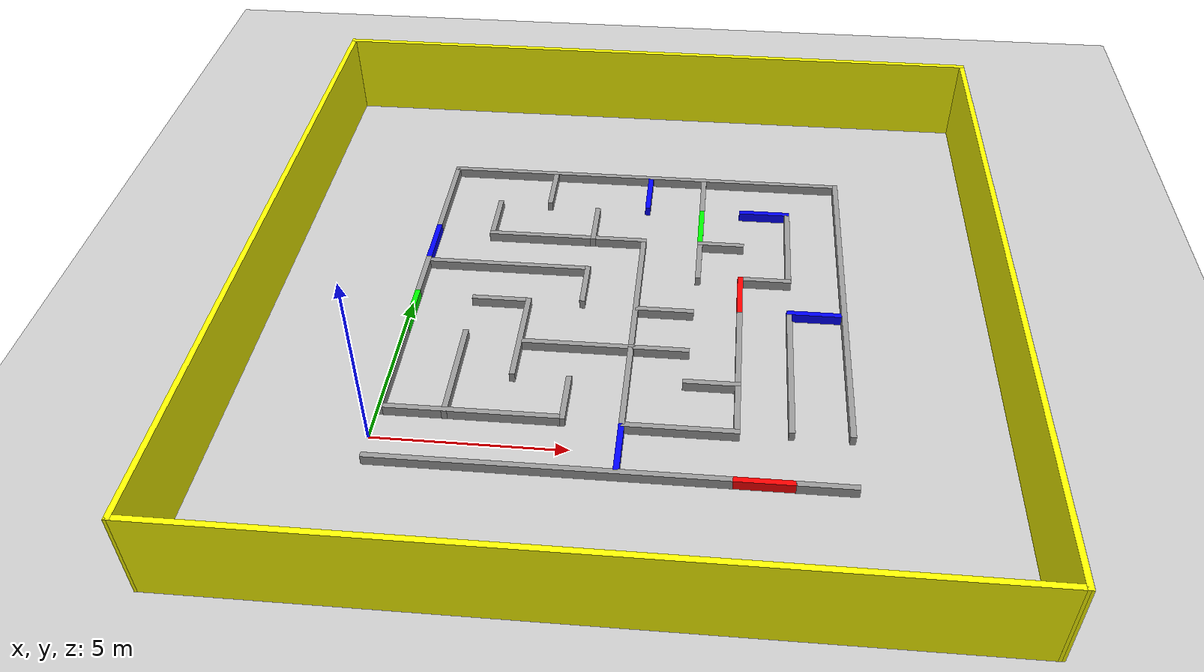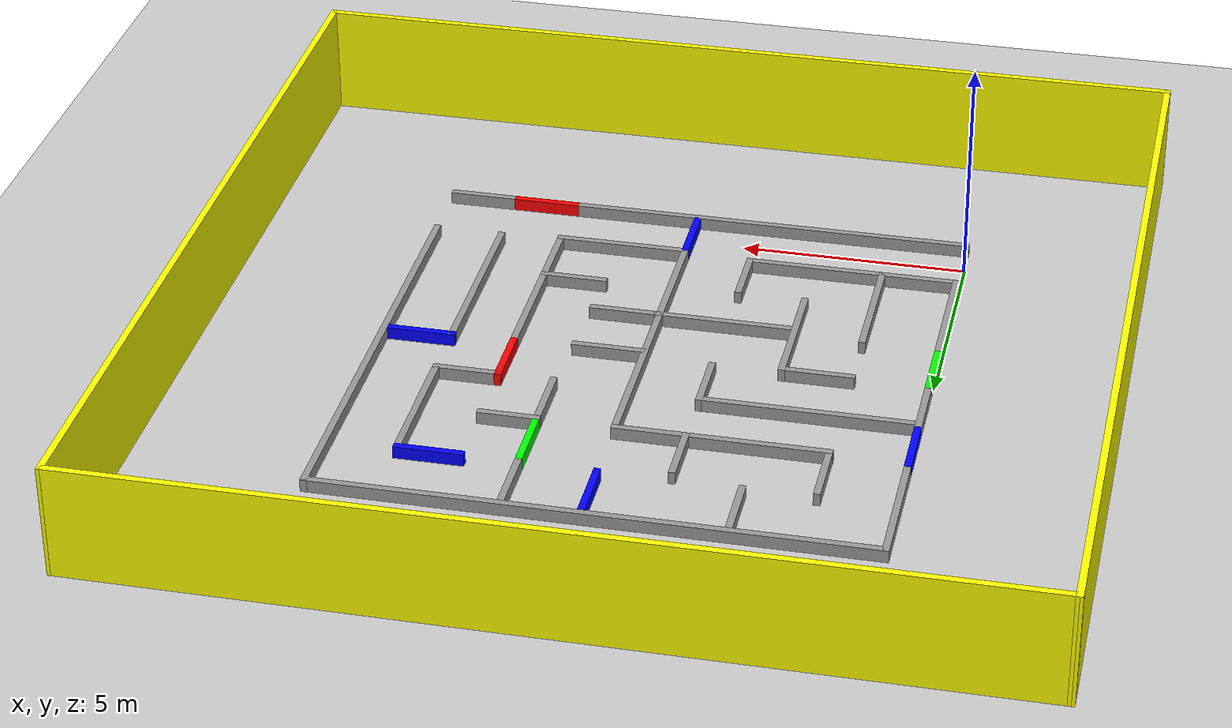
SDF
<sdf version="1.7">
 <world name="default">
  <light name="sun" type="directional">
   <pose>0 0 10 0 -0 0</pose>
   <diffuse>0.8 0.8 0.8 1</diffuse>
   <specular>0.2 0.2 0.2 1</specular>
   <attenuation>
    <range>1000</range>
    <constant>0.9</constant>
    <linear>0.01</linear>
    <quadratic>0.001</quadratic>
   </attenuation>
   <direction>-0.5 0.1 -0.9</direction>
   <spot><inner_angle>0</inner_angle><outer_angle>0</outer_angle><falloff>0</falloff></spot>
  </light>
  <model name="ground_plane">
   <static>1</static>
   <link name="link">
    <collision name="collision">
     <geometry><plane><normal>0 0 1</normal><size>100 100</size></plane></geometry>
     <surface><friction><ode><mu>100</mu><mu2>50</mu2></ode></friction></surface>
    </collision>
    <visual name="visual">
     <cast_shadows>0</cast_shadows>
     <geometry><plane><normal>0 0 1</normal><size>100 100</size></plane></geometry>
     <material>
      <script><uri>file://media/materials/scripts/gazebo.material</uri><name>Gazebo/Grey</name></script>
     </material>
    </visual>
   </link>
  </model>
  <gravity>0 0 -9.8</gravity>
  <magnetic_field>6e-06 2.3e-05 -4.2e-05</magnetic_field>
  <atmosphere type="adiabatic"/>
  <physics type="ode">
   <max_step_size>0.001</max_step_size>
   <real_time_factor>1</real_time_factor>
   <real_time_update_rate>1000</real_time_update_rate>
  </physics>
  <scene><ambient>0.4 0.4 0.4 1</ambient><background>0.7 0.7 0.7 1</background><shadows>1</shadows></scene>
  <audio><device>default</device></audio>
  <spherical_coordinates>
   <surface_model>EARTH_WGS84</surface_model>
   <latitude_deg>0</latitude_deg>
   <longitude_deg>0</longitude_deg>
   <elevation>0</elevation>
   <heading_deg>0</heading_deg>
  </spherical_coordinates>
  <model name="rbtc_class_labyrinth">
   <static>1</static>
   <pose>6.00404 5.23543 -0.25 0 0 -1.57079</pose>
   <link name="Wall_10">
    <collision name="Wall_10_Collision">
     <geometry><box><size>12 0.15 0.5</size></box></geometry>
     <pose>0 0 0.25 0 -0 0</pose>
    </collision>
    <visual name="Wall_10_Visual">
     <pose>0 0 0.25 0 -0 0</pose>
     <geometry><box><size>12 0.15 0.5</size></box></geometry>
     <material>
      <script><uri>file://media/materials/scripts/gazebo.material</uri><name>Gazebo/Grey</name></script>
      <ambient>0 0 0 1</ambient>
     </material>
     <meta><layer>0</layer></meta>
    </visual>
    <pose>-5.99967 -0.000279 0 0 -0 -1.5708</pose>
   </link>
   <link name="Wall_102">
    <collision name="Wall_102_Collision">
     <geometry><box><size>1.35 0.15 0.5</size></box></geometry>
     <pose>0 0 0.25 0 -0 0</pose>
    </collision>
    <visual name="Wall_102_Visual">
     <pose>0 0 0.25 0 -0 0</pose>
     <geometry><box><size>1.35 0.15 0.5</size></box></geometry>
     <material>
      <script><uri>file://media/materials/scripts/gazebo.material</uri><name>Gazebo/Grey</name></script>
      <ambient>0 0 0 1</ambient>
     </material>
     <meta><layer>0</layer></meta>
    </visual>
    <pose>-2.85168 2.46272 0 0 -0 1.5708</pose>
   </link>
   <link name="Wall_104">
    <collision name="Wall_104_Collision">
     <geometry><box><size>1.5 0.15 0.5</size></box></geometry>
     <pose>0 0 0.25 0 -0 0</pose>
    </collision>
    <visual name="Wall_104_Visual">
     <pose>0 0 0.25 0 -0 0</pose>
     <geometry><box><size>1.5 0.15 0.5</size></box></geometry>
     <material>
      <script><uri>file://media/materials/scripts/gazebo.material</uri><name>Gazebo/Grey</name></script>
      <ambient>0 0 0 1</ambient>
     </material>
     <meta><layer>0</layer></meta>
    </visual>
    <pose>-5.17467 1.86272 0 0 -0 0</pose>
   </link>
   <link name="Wall_106">
    <collision name="Wall_106_Collision">
     <geometry><box><size>1.5 0.15 0.5</size></box></geometry>
     <pose>0 0 0.25 0 -0 0</pose>
    </collision>
    <visual name="Wall_106_Visual">
     <pose>0 0 0.25 0 -0 0</pose>
     <geometry><box><size>1.5 0.15 0.5</size></box></geometry>
     <material>
      <script><uri>file://media/materials/scripts/gazebo.material</uri><name>Gazebo/Grey</name></script>
      <ambient>0 1 0 1</ambient>
     </material>
     <meta><layer>0</layer></meta>
    </visual>
    <pose>-3.67568 1.86272 0 0 -0 0</pose>
   </link>
   <link name="Wall_108">
    <collision name="Wall_108_Collision">
     <geometry><box><size>7.25 0.15 0.5</size></box></geometry>
     <pose>0 0 0.25 0 -0 0</pose>
    </collision>
    <visual name="Wall_108_Visual">
     <pose>0 0 0.25 0 -0 0</pose>
     <geometry><box><size>7.25 0.15 0.5</size></box></geometry>
     <material>
      <script><uri>file://media/materials/scripts/gazebo.material</uri><name>Gazebo/Grey</name></script>
      <ambient>0 0 0 1</ambient>
     </material>
     <meta><layer>0</layer></meta>
    </visual>
    <pose>0.843091 0.208721 0 0 -0 0</pose>
   </link>
   <link name="Wall_11">
    <collision name="Wall_11_Collision">
     <geometry><box><size>3 0.15 0.5</size></box></geometry>
     <pose>0 0 0.25 0 -0 0</pose>
    </collision>
    <visual name="Wall_11_Visual">
     <pose>0 0 0.25 0 -0 0</pose>
     <geometry><box><size>3 0.15 0.5</size></box></geometry>
     <material>
      <script><uri>file://media/materials/scripts/gazebo.material</uri><name>Gazebo/Grey</name></script>
      <ambient>0 0 0 1</ambient>
     </material>
     <meta><layer>0</layer></meta>
    </visual>
    <pose>-4.57467 -5.92528 0 0 -0 0</pose>
   </link>
   <link name="Wall_110">
    <collision name="Wall_110_Collision">
     <geometry><box><size>1.5 0.15 0.5</size></box></geometry>
     <pose>0 0 0.25 0 -0 0</pose>
    </collision>
    <visual name="Wall_110_Visual">
     <pose>0 0 0.25 0 -0 0</pose>
     <geometry><box><size>1.5 0.15 0.5</size></box></geometry>
     <material>
      <script><uri>file://media/materials/scripts/gazebo.material</uri><name>Gazebo/Grey</name></script>
      <ambient>0 0 0 1</ambient>
     </material>
     <meta><layer>0</layer></meta>
    </visual>
    <pose>-2.02668 1.86272 0 0 -0 0</pose>
   </link>
   <link name="Wall_114">
    <collision name="Wall_114_Collision">
     <geometry><box><size>1.6 0.15 0.5</size></box></geometry>
     <pose>0 0 0.25 0 -0 0</pose>
    </collision>
    <visual name="Wall_114_Visual">
     <pose>0 0 0.25 0 -0 0</pose>
     <geometry><box><size>1.6 0.15 0.5</size></box></geometry>
     <material>
      <script><uri>file://media/materials/scripts/gazebo.material</uri><name>Gazebo/Grey</name></script>
      <ambient>0 0 0 1</ambient>
     </material>
     <meta><layer>0</layer></meta>
    </visual>
    <pose>0.148325 1.00672 0 0 -0 -1.5708</pose>
   </link>
   <link name="Wall_121">
    <collision name="Wall_121_Collision">
     <geometry><box><size>1.5 0.15 0.5</size></box></geometry>
     <pose>0 0 0.25 0 -0 0</pose>
    </collision>
    <visual name="Wall_121_Visual">
     <pose>0 0 0.25 0 -0 0</pose>
     <geometry><box><size>1.5 0.15 0.5</size></box></geometry>
     <material>
      <script><uri>file://media/materials/scripts/gazebo.material</uri><name>Gazebo/Grey</name></script>
      <ambient>0 0 1 1</ambient>
     </material>
     <meta><layer>0</layer></meta>
    </visual>
    <pose>5.21232 0.208721 0 0 -0 0</pose>
   </link>
   <link name="Wall_13">
    <collision name="Wall_13_Collision">
     <geometry><box><size>10.5 0.15 0.5</size></box></geometry>
     <pose>0 0 0.25 0 -0 0</pose>
    </collision>
    <visual name="Wall_13_Visual">
     <pose>0 0 0.25 0 -0 0</pose>
     <geometry><box><size>10.5 0.15 0.5</size></box></geometry>
     <material>
      <script><uri>file://media/materials/scripts/gazebo.material</uri><name>Gazebo/Grey</name></script>
      <ambient>0 0 0 1</ambient>
     </material>
     <meta><layer>0</layer></meta>
    </visual>
    <pose>-0.824675 5.92472 0 0 -0 0</pose>
   </link>
   <link name="Wall_136">
    <collision name="Wall_136_Collision">
     <geometry><box><size>3 0.15 0.5</size></box></geometry>
     <pose>0 0 0.25 0 -0 0</pose>
    </collision>
    <visual name="Wall_136_Visual">
     <pose>0 0 0.25 0 -0 0</pose>
     <geometry><box><size>3 0.15 0.5</size></box></geometry>
     <material>
      <script><uri>file://media/materials/scripts/gazebo.material</uri><name>Gazebo/Grey</name></script>
      <ambient>0 0 0 1</ambient>
     </material>
     <meta><layer>0</layer></meta>
    </visual>
    <pose>4.47332 1.64072 0 0 -0 1.5708</pose>
   </link>
   <link name="Wall_138">
    <collision name="Wall_138_Collision">
     <geometry><box><size>1.5 0.15 0.5</size></box></geometry>
     <pose>0 0 0.25 0 -0 0</pose>
    </collision>
    <visual name="Wall_138_Visual">
     <pose>0 0 0.25 0 -0 0</pose>
     <geometry><box><size>1.5 0.15 0.5</size></box></geometry>
     <material>
      <script><uri>file://media/materials/scripts/gazebo.material</uri><name>Gazebo/Grey</name></script>
      <ambient>0 0 0 1</ambient>
     </material>
     <meta><layer>0</layer></meta>
    </visual>
    <pose>2.84932 2.39072 0 0 -0 -1.5708</pose>
   </link>
   <link name="Wall_140">
    <collision name="Wall_140_Collision">
     <geometry><box><size>1.5 0.15 0.5</size></box></geometry>
     <pose>0 0 0.25 0 -0 0</pose>
    </collision>
    <visual name="Wall_140_Visual">
     <pose>0 0 0.25 0 -0 0</pose>
     <geometry><box><size>1.5 0.15 0.5</size></box></geometry>
     <material>
      <script><uri>file://media/materials/scripts/gazebo.material</uri><name>Gazebo/Grey</name></script>
      <ambient>0 0 0 1</ambient>
     </material>
     <meta><layer>0</layer></meta>
    </visual>
    <pose>3.65033 3.06572 0 0 -0 0</pose>
   </link>
   <link name="Wall_142">
    <collision name="Wall_142_Collision">
     <geometry><box><size>1.5 0.15 0.5</size></box></geometry>
     <pose>0 0 0.25 0 -0 0</pose>
    </collision>
    <visual name="Wall_142_Visual">
     <pose>0 0 0.25 0 -0 0</pose>
     <geometry><box><size>1.5 0.15 0.5</size></box></geometry>
     <material>
      <script><uri>file://media/materials/scripts/gazebo.material</uri><name>Gazebo/Grey</name></script>
      <ambient>0 0 0 1</ambient>
     </material>
     <meta><layer>0</layer></meta>
    </visual>
    <pose>1.69633 1.01672 0 0 -0 -1.5708</pose>
   </link>
   <link name="Wall_144">
    <collision name="Wall_144_Collision">
     <geometry><box><size>2.75 0.15 0.5</size></box></geometry>
     <pose>0 0 0.25 0 -0 0</pose>
    </collision>
    <visual name="Wall_144_Visual">
     <pose>0 0 0.25 0 -0 0</pose>
     <geometry><box><size>2.75 0.15 0.5</size></box></geometry>
     <material>
      <script><uri>file://media/materials/scripts/gazebo.material</uri><name>Gazebo/Grey</name></script>
      <ambient>0 0 0 1</ambient>
     </material>
     <meta><layer>0</layer></meta>
    </visual>
    <pose>1.44932 3.06572 0 0 -0 0</pose>
   </link>
   <link name="Wall_146">
    <collision name="Wall_146_Collision">
     <geometry><box><size>1.5 0.15 0.5</size></box></geometry>
     <pose>0 0 0.25 0 -0 0</pose>
    </collision>
    <visual name="Wall_146_Visual">
     <pose>0 0 0.25 0 -0 0</pose>
     <geometry><box><size>1.5 0.15 0.5</size></box></geometry>
     <material>
      <script><uri>file://media/materials/scripts/gazebo.material</uri><name>Gazebo/Grey</name></script>
      <ambient>1 0 0 1</ambient>
     </material>
     <meta><layer>0</layer></meta>
    </visual>
    <pose>-0.672675 3.06572 0 0 -0 0</pose>
   </link>
   <link name="Wall_148">
    <collision name="Wall_148_Collision">
     <geometry><box><size>1.5 0.15 0.5</size></box></geometry>
     <pose>0 0 0.25 0 -0 0</pose>
    </collision>
    <visual name="Wall_148_Visual">
     <pose>0 0 0.25 0 -0 0</pose>
     <geometry><box><size>1.5 0.15 0.5</size></box></geometry>
     <material>
      <script><uri>file://media/materials/scripts/gazebo.material</uri><name>Gazebo/Grey</name></script>
      <ambient>0 0 0 1</ambient>
     </material>
     <meta><layer>0</layer></meta>
    </visual>
    <pose>-1.34668 3.74072 0 0 -0 1.5708</pose>
   </link>
   <link name="Wall_150">
    <collision name="Wall_150_Collision">
     <geometry><box><size>3 0.15 0.5</size></box></geometry>
     <pose>0 0 0.25 0 -0 0</pose>
    </collision>
    <visual name="Wall_150_Visual">
     <pose>0 0 0.25 0 -0 0</pose>
     <geometry><box><size>3 0.15 0.5</size></box></geometry>
     <material>
      <script><uri>file://media/materials/scripts/gazebo.material</uri><name>Gazebo/Grey</name></script>
      <ambient>0 0 0 1</ambient>
     </material>
     <meta><layer>0</layer></meta>
    </visual>
    <pose>-2.88967 4.41572 0 0 -0 3.14159</pose>
   </link>
   <link name="Wall_154">
    <collision name="Wall_154_Collision">
     <geometry><box><size>1.5 0.15 0.5</size></box></geometry>
     <pose>0 0 0.25 0 -0 0</pose>
    </collision>
    <visual name="Wall_154_Visual">
     <pose>0 0 0.25 0 -0 0</pose>
     <geometry><box><size>1.5 0.15 0.5</size></box></geometry>
     <material>
      <script><uri>file://media/materials/scripts/gazebo.material</uri><name>Gazebo/Grey</name></script>
      <ambient>0 0 1 1</ambient>
     </material>
     <meta><layer>0</layer></meta>
    </visual>
    <pose>-4.45367 3.74072 0 0 -0 -1.5708</pose>
   </link>
   <link name="Wall_158">
    <collision name="Wall_158_Collision">
     <geometry><box><size>4.5 0.15 0.5</size></box></geometry>
     <pose>0 0 0.25 0 -0 0</pose>
    </collision>
    <visual name="Wall_158_Visual">
     <pose>0 0 0.25 0 -0 0</pose>
     <geometry><box><size>4.5 0.15 0.5</size></box></geometry>
     <material>
      <script><uri>file://media/materials/scripts/gazebo.material</uri><name>Gazebo/Grey</name></script>
      <ambient>0 0 0 1</ambient>
     </material>
     <meta><layer>0</layer></meta>
    </visual>
    <pose>4.34933 -3.60028 0 0 -0 -1.5708</pose>
   </link>
   <link name="Wall_160">
    <collision name="Wall_160_Collision">
     <geometry><box><size>3 0.15 0.5</size></box></geometry>
     <pose>0 0 0.25 0 -0 0</pose>
    </collision>
    <visual name="Wall_160_Visual">
     <pose>0 0 0.25 0 -0 0</pose>
     <geometry><box><size>3 0.15 0.5</size></box></geometry>
     <material>
      <script><uri>file://media/materials/scripts/gazebo.material</uri><name>Gazebo/Grey</name></script>
      <ambient>0 0 0 1</ambient>
     </material>
     <meta><layer>0</layer></meta>
    </visual>
    <pose>2.92433 -4.27628 0 0 -0 3.14159</pose>
   </link>
   <link name="Wall_162">
    <collision name="Wall_162_Collision">
     <geometry><box><size>4.5 0.15 0.5</size></box></geometry>
     <pose>0 0 0.25 0 -0 0</pose>
    </collision>
    <visual name="Wall_162_Visual">
     <pose>0 0 0.25 0 -0 0</pose>
     <geometry><box><size>4.5 0.15 0.5</size></box></geometry>
     <material>
      <script><uri>file://media/materials/scripts/gazebo.material</uri><name>Gazebo/Grey</name></script>
      <ambient>0 0 0 1</ambient>
     </material>
     <meta><layer>0</layer></meta>
    </visual>
    <pose>-1.44467 -3.60128 0 0 -0 1.5708</pose>
   </link>
   <link name="Wall_164">
    <collision name="Wall_164_Collision">
     <geometry><box><size>1.5 0.15 0.5</size></box></geometry>
     <pose>0 0 0.25 0 -0 0</pose>
    </collision>
    <visual name="Wall_164_Visual">
     <pose>0 0 0.25 0 -0 0</pose>
     <geometry><box><size>1.5 0.15 0.5</size></box></geometry>
     <material>
      <script><uri>file://media/materials/scripts/gazebo.material</uri><name>Gazebo/Grey</name></script>
      <ambient>0 0 0 1</ambient>
     </material>
     <meta><layer>0</layer></meta>
    </visual>
    <pose>-0.769675 -1.29528 0 0 -0 0</pose>
   </link>
   <link name="Wall_166">
    <collision name="Wall_166_Collision">
     <geometry><box><size>1.5 0.15 0.5</size></box></geometry>
     <pose>0 0 0.25 0 -0 0</pose>
    </collision>
    <visual name="Wall_166_Visual">
     <pose>0 0 0.25 0 -0 0</pose>
     <geometry><box><size>1.5 0.15 0.5</size></box></geometry>
     <material>
      <script><uri>file://media/materials/scripts/gazebo.material</uri><name>Gazebo/Grey</name></script>
      <ambient>0 0 0 1</ambient>
     </material>
     <meta><layer>0</layer></meta>
    </visual>
    <pose>3.67433 -1.29128 0 0 -0 3.14159</pose>
   </link>
   <link name="Wall_168">
    <collision name="Wall_168_Collision">
     <geometry><box><size>1.5 0.15 0.5</size></box></geometry>
     <pose>0 0 0.25 0 -0 0</pose>
    </collision>
    <visual name="Wall_168_Visual">
     <pose>0 0 0.25 0 -0 0</pose>
     <geometry><box><size>1.5 0.15 0.5</size></box></geometry>
     <material>
      <script><uri>file://media/materials/scripts/gazebo.material</uri><name>Gazebo/Grey</name></script>
      <ambient>0 0 0 1</ambient>
     </material>
     <meta><layer>0</layer></meta>
    </visual>
    <pose>0.059325 -3.60252 0 0 -0 -1.5708</pose>
   </link>
   <link name="Wall_170">
    <collision name="Wall_170_Collision">
     <geometry><box><size>3 0.15 0.5</size></box></geometry>
     <pose>0 0 0.25 0 -0 0</pose>
    </collision>
    <visual name="Wall_170_Visual">
     <pose>0 0 0.25 0 -0 0</pose>
     <geometry><box><size>3 0.15 0.5</size></box></geometry>
     <material>
      <script><uri>file://media/materials/scripts/gazebo.material</uri><name>Gazebo/Grey</name></script>
      <ambient>0 0 0 1</ambient>
     </material>
     <meta><layer>0</layer></meta>
    </visual>
    <pose>1.48432 -2.77828 0 0 -0 0</pose>
   </link>
   <link name="Wall_172">
    <collision name="Wall_172_Collision">
     <geometry><box><size>3.05 0.15 0.5</size></box></geometry>
     <pose>0 0 0.25 0 -0 0</pose>
    </collision>
    <visual name="Wall_172_Visual">
     <pose>0 0 0.25 0 -0 0</pose>
     <geometry><box><size>3.05 0.15 0.5</size></box></geometry>
     <material>
      <script><uri>file://media/materials/scripts/gazebo.material</uri><name>Gazebo/Grey</name></script>
      <ambient>0 0 0 1</ambient>
     </material>
     <meta><layer>0</layer></meta>
    </visual>
    <pose>1.69633 -1.19428 0 0 -0 1.5708</pose>
   </link>
   <link name="Wall_20">
    <collision name="Wall_20_Collision">
     <geometry><box><size>4.5 0.15 0.5</size></box></geometry>
     <pose>0 0 0.25 0 -0 0</pose>
    </collision>
    <visual name="Wall_20_Visual">
     <pose>0 0 0.25 0 -0 0</pose>
     <geometry><box><size>4.5 0.15 0.5</size></box></geometry>
     <material>
      <script><uri>file://media/materials/scripts/gazebo.material</uri><name>Gazebo/Grey</name></script>
      <ambient>0 0 0 1</ambient>
     </material>
     <meta><layer>0</layer></meta>
    </visual>
    <pose>2.15733 4.42372 0 0 -0 3.14159</pose>
   </link>
   <link name="Wall_21">
    <collision name="Wall_21_Collision">
     <geometry><box><size>1.5003 0.15 0.5</size></box></geometry>
     <pose>0 0 0.25 0 -0 0</pose>
    </collision>
    <visual name="Wall_21_Visual">
     <pose>0 0 0.25 0 -0 0</pose>
     <geometry><box><size>1.5003 0.15 0.5</size></box></geometry>
     <material>
      <script><uri>file://media/materials/scripts/gazebo.material</uri><name>Gazebo/Grey</name></script>
      <ambient>0 0 1 1</ambient>
     </material>
     <meta><layer>0</layer></meta>
    </visual>
    <pose>-0.017675 5.09872 0 0 -0 1.5708</pose>
   </link>
   <link name="Wall_29">
    <collision name="Wall_29_Collision">
     <geometry><box><size>1.5 0.15 0.5</size></box></geometry>
     <pose>0 0 0.25 0 -0 0</pose>
    </collision>
    <visual name="Wall_29_Visual">
     <pose>0 0 0.25 0 -0 0</pose>
     <geometry><box><size>1.5 0.15 0.5</size></box></geometry>
     <material>
      <script><uri>file://media/materials/scripts/gazebo.material</uri><name>Gazebo/Grey</name></script>
      <ambient>0 0 0 1</ambient>
     </material>
     <meta><layer>0</layer></meta>
    </visual>
    <pose>5.99967 5.25028 0 0 -0 -1.5708</pose>
   </link>
   <link name="Wall_45">
    <collision name="Wall_45_Collision">
     <geometry><box><size>1.5 0.15 0.5</size></box></geometry>
     <pose>0 0 0.25 0 -0 0</pose>
    </collision>
    <visual name="Wall_45_Visual">
     <pose>0 0 0.25 0 -0 0</pose>
     <geometry><box><size>1.5 0.15 0.5</size></box></geometry>
     <material>
      <script><uri>file://media/materials/scripts/gazebo.material</uri><name>Gazebo/Grey</name></script>
      <ambient>0 0 1 1</ambient>
     </material>
     <meta><layer>0</layer></meta>
    </visual>
    <pose>-2.32667 -5.92528 0 0 -0 0</pose>
   </link>
   <link name="Wall_49">
    <collision name="Wall_49_Collision">
     <geometry><box><size>1.5 0.15 0.5</size></box></geometry>
     <pose>0 0 0.25 0 -0 0</pose>
    </collision>
    <visual name="Wall_49_Visual">
     <pose>0 0 0.25 0 -0 0</pose>
     <geometry><box><size>1.5 0.15 0.5</size></box></geometry>
     <material>
      <script><uri>file://media/materials/scripts/gazebo.material</uri><name>Gazebo/Grey</name></script>
      <ambient>0 0 0 1</ambient>
     </material>
     <meta><layer>0</layer></meta>
    </visual>
    <pose>-0.826675 -5.92528 0 0 -0 0</pose>
   </link>
   <link name="Wall_51">
    <collision name="Wall_51_Collision">
     <geometry><box><size>1.5 0.15 0.5</size></box></geometry>
     <pose>0 0 0.25 0 -0 0</pose>
    </collision>
    <visual name="Wall_51_Visual">
     <pose>0 0 0.25 0 -0 0</pose>
     <geometry><box><size>1.5 0.15 0.5</size></box></geometry>
     <material>
      <script><uri>file://media/materials/scripts/gazebo.material</uri><name>Gazebo/Grey</name></script>
      <ambient>0 1 0 1</ambient>
     </material>
     <meta><layer>0</layer></meta>
    </visual>
    <pose>0.674325 -5.92528 0 0 -0 0</pose>
   </link>
   <link name="Wall_59">
    <collision name="Wall_59_Collision">
     <geometry><box><size>3 0.15 0.5</size></box></geometry>
     <pose>0 0 0.25 0 -0 0</pose>
    </collision>
    <visual name="Wall_59_Visual">
     <pose>0 0 0.25 0 -0 0</pose>
     <geometry><box><size>3 0.15 0.5</size></box></geometry>
     <material>
      <script><uri>file://media/materials/scripts/gazebo.material</uri><name>Gazebo/Grey</name></script>
      <ambient>0 0 0 1</ambient>
     </material>
     <meta><layer>0</layer></meta>
    </visual>
    <pose>2.92433 -5.92528 0 0 -0 0</pose>
   </link>
   <link name="Wall_69">
    <collision name="Wall_69_Collision">
     <geometry><box><size>1.5 0.15 0.5</size></box></geometry>
     <pose>0 0 0.25 0 -0 0</pose>
    </collision>
    <visual name="Wall_69_Visual">
     <pose>0 0 0.25 0 -0 0</pose>
     <geometry><box><size>1.5 0.15 0.5</size></box></geometry>
     <material>
      <script><uri>file://media/materials/scripts/gazebo.material</uri><name>Gazebo/Grey</name></script>
      <ambient>1 0 0 1</ambient>
     </material>
     <meta><layer>0</layer></meta>
    </visual>
    <pose>5.99932 3.74972 0 0 -0 -1.5708</pose>
   </link>
   <link name="Wall_71">
    <collision name="Wall_71_Collision">
     <geometry><box><size>9 0.15 0.5</size></box></geometry>
     <pose>0 0 0.25 0 -0 0</pose>
    </collision>
    <visual name="Wall_71_Visual">
     <pose>0 0 0.25 0 -0 0</pose>
     <geometry><box><size>9 0.15 0.5</size></box></geometry>
     <material>
      <script><uri>file://media/materials/scripts/gazebo.material</uri><name>Gazebo/Grey</name></script>
      <ambient>0 0 0 1</ambient>
     </material>
     <meta><layer>0</layer></meta>
    </visual>
    <pose>5.99932 -1.50028 0 0 -0 -1.5708</pose>
   </link>
   <link name="Wall_85">
    <collision name="Wall_85_Collision">
     <geometry><box><size>1.5 0.15 0.5</size></box></geometry>
     <pose>0 0 0.25 0 -0 0</pose>
    </collision>
    <visual name="Wall_85_Visual">
     <pose>0 0 0.25 0 -0 0</pose>
     <geometry><box><size>1.5 0.15 0.5</size></box></geometry>
     <material>
      <script><uri>file://media/materials/scripts/gazebo.material</uri><name>Gazebo/Grey</name></script>
      <ambient>0 0 0 1</ambient>
     </material>
     <meta><layer>0</layer></meta>
    </visual>
    <pose>-5.17467 -2.77928 0 0 -0 0</pose>
   </link>
   <link name="Wall_87">
    <collision name="Wall_87_Collision">
     <geometry><box><size>3 0.15 0.5</size></box></geometry>
     <pose>0 0 0.25 0 -0 0</pose>
    </collision>
    <visual name="Wall_87_Visual">
     <pose>0 0 0.25 0 -0 0</pose>
     <geometry><box><size>3 0.15 0.5</size></box></geometry>
     <material>
      <script><uri>file://media/materials/scripts/gazebo.material</uri><name>Gazebo/Grey</name></script>
      <ambient>0 0 0 1</ambient>
     </material>
     <meta><layer>0</layer></meta>
    </visual>
    <pose>-2.84877 -2.86228 0 0 -0 1.5708</pose>
   </link>
   <link name="Wall_89">
    <collision name="Wall_89_Collision">
     <geometry><box><size>1.5 0.15 0.5</size></box></geometry>
     <pose>0 0 0.25 0 -0 0</pose>
    </collision>
    <visual name="Wall_89_Visual">
     <pose>0 0 0.25 0 -0 0</pose>
     <geometry><box><size>1.5 0.15 0.5</size></box></geometry>
     <material>
      <script><uri>file://media/materials/scripts/gazebo.material</uri><name>Gazebo/Grey</name></script>
      <ambient>0 0 0 1</ambient>
     </material>
     <meta><layer>0</layer></meta>
    </visual>
    <pose>-3.52367 -1.28928 0 0 -0 3.14159</pose>
   </link>
   <link name="Wall_91">
    <collision name="Wall_91_Collision">
     <geometry><box><size>1.5 0.15 0.5</size></box></geometry>
     <pose>0 0 0.25 0 -0 0</pose>
    </collision>
    <visual name="Wall_91_Visual">
     <pose>0 0 0.25 0 -0 0</pose>
     <geometry><box><size>1.5 0.15 0.5</size></box></geometry>
     <material>
      <script><uri>file://media/materials/scripts/gazebo.material</uri><name>Gazebo/Grey</name></script>
      <ambient>0 0 0 1</ambient>
     </material>
     <meta><layer>0</layer></meta>
    </visual>
    <pose>-3.67422 -4.28719 0 0 -0 0</pose>
   </link>
   <link name="Wall_93">
    <collision name="Wall_93_Collision">
     <geometry><box><size>1.5 0.15 0.5</size></box></geometry>
     <pose>0 0 0.25 0 -0 0</pose>
    </collision>
    <visual name="Wall_93_Visual">
     <pose>0 0 0.25 0 -0 0</pose>
     <geometry><box><size>1.5 0.15 0.5</size></box></geometry>
     <material>
      <script><uri>file://media/materials/scripts/gazebo.material</uri><name>Gazebo/Grey</name></script>
      <ambient>0 0 0 1</ambient>
     </material>
     <meta><layer>0</layer></meta>
    </visual>
    <pose>-2.84868 -0.466279 0 0 -0 1.5708</pose>
   </link>
   <link name="Wall_96">
    <collision name="Wall_96_Collision">
     <geometry><box><size>1.5 0.15 0.5</size></box></geometry>
     <pose>0 0 0.25 0 -0 0</pose>
    </collision>
    <visual name="Wall_96_Visual">
     <pose>0 0 0.25 0 -0 0</pose>
     <geometry><box><size>1.5 0.15 0.5</size></box></geometry>
     <material>
      <script><uri>file://media/materials/scripts/gazebo.material</uri><name>Gazebo/Grey</name></script>
      <ambient>0 0 1 1</ambient>
     </material>
     <meta><layer>0</layer></meta>
    </visual>
    <pose>-5.17467 0.211721 0 0 -0 3.14159</pose>
   </link>
   <static>1</static>
  </model>
  <model name="rbtc_class_wall">
   <pose>5.98032 5.13082 0 0 -0 0</pose>
   <link name="Wall_174">
    <collision name="Wall_174_Collision">
     <geometry><box><size>20 0.15 2.5</size></box></geometry>
     <pose>0 0 1.25 0 -0 0</pose>
    </collision>
    <visual name="Wall_174_Visual">
     <pose>0 0 1.25 0 -0 0</pose>
     <geometry><box><size>20 0.15 2.5</size></box></geometry>
     <material>
      <script><uri>file://media/materials/scripts/gazebo.material</uri><name>Gazebo/Grey</name></script>
      <ambient>1 1 0 1</ambient>
     </material>
     <meta><layer>0</layer></meta>
    </visual>
    <pose>-0.017675 9.92498 0 0 -0 0</pose>
   </link>
   <link name="Wall_175">
    <collision name="Wall_175_Collision">
     <geometry><box><size>20 0.15 2.5</size></box></geometry>
     <pose>0 0 1.25 0 -0 0</pose>
    </collision>
    <visual name="Wall_175_Visual">
     <pose>0 0 1.25 0 -0 0</pose>
     <geometry><box><size>20 0.15 2.5</size></box></geometry>
     <material>
      <script><uri>file://media/materials/scripts/gazebo.material</uri><name>Gazebo/Grey</name></script>
      <ambient>1 1 0 1</ambient>
     </material>
     <meta><layer>0</layer></meta>
    </visual>
    <pose>9.925 -0 0 0 -0 -1.56902</pose>
   </link>
   <link name="Wall_177">
    <collision name="Wall_177_Collision">
     <geometry><box><size>20 0.15 2.5</size></box></geometry>
     <pose>0 0 1.25 0 -0 0</pose>
    </collision>
    <visual name="Wall_177_Visual">
     <pose>0 0 1.25 0 -0 0</pose>
     <geometry><box><size>20 0.15 2.5</size></box></geometry>
     <material>
      <script><uri>file://media/materials/scripts/gazebo.material</uri><name>Gazebo/Grey</name></script>
      <ambient>1 1 0 1</ambient>
     </material>
     <meta><layer>0</layer></meta>
    </visual>
    <pose>-9.925 -0 0 0 -0 -1.56902</pose>
   </link>
   <link name="Wall_178">
    <collision name="Wall_178_Collision">
     <geometry><box><size>20 0.15 2.5</size></box></geometry>
     <pose>0 0 1.25 0 -0 0</pose>
    </collision>
    <visual name="Wall_178_Visual">
     <pose>0 0 1.25 0 -0 0</pose>
     <geometry><box><size>20 0.15 2.5</size></box></geometry>
     <material>
      <script><uri>file://media/materials/scripts/gazebo.material</uri><name>Gazebo/Grey</name></script>
      <ambient>1 1 0 1</ambient>
     </material>
     <meta><layer>0</layer></meta>
    </visual>
    <pose>0.017675 -9.92498 0 0 -0 0</pose>
   </link>
   <static>1</static>
  </model>
 </world>
</sdf>
